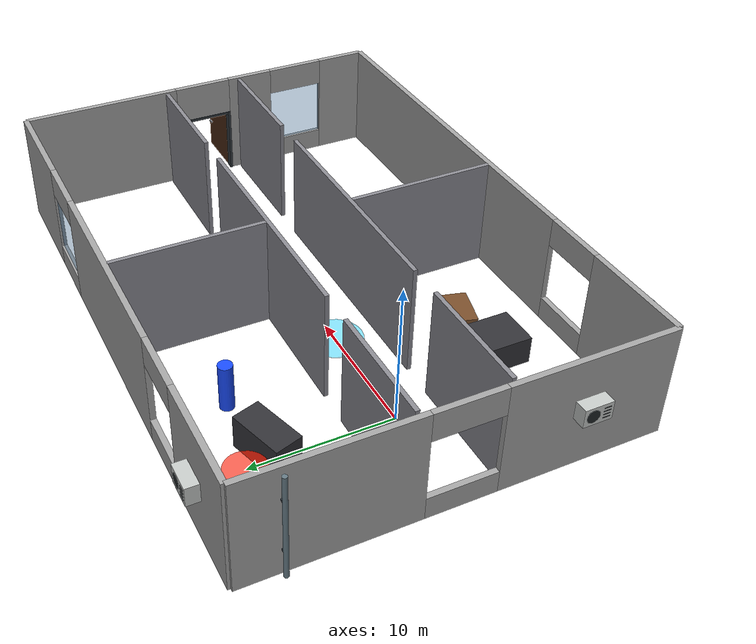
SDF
<sdf version="1.9">
 <world name="fire_scout_floor">
  <model name="building">
   <static>true</static>
   <pose>12.5 0 0 0 0 0</pose>
   <link name="north_wall_far_west">
    <pose>-16.1 14 4 0 0 0</pose>
    <collision name="collision"><geometry><box><size>7.8 0.4 8</size></box></geometry></collision>
    <visual name="visual">
     <geometry><box><size>7.8 0.4 8</size></box></geometry>
     <material><ambient>0.65 0.65 0.65 1</ambient><diffuse>0.65 0.65 0.65 1</diffuse></material>
    </visual>
   </link>
   <link name="north_wall_middle">
    <pose>0 14 4 0 0 0</pose>
    <collision name="collision"><geometry><box><size>15.6 0.4 8</size></box></geometry></collision>
    <visual name="visual">
     <geometry><box><size>15.6 0.4 8</size></box></geometry>
     <material><ambient>0.65 0.65 0.65 1</ambient><diffuse>0.65 0.65 0.65 1</diffuse></material>
    </visual>
   </link>
   <link name="north_wall_far_east">
    <pose>16.1 14 4 0 0 0</pose>
    <collision name="collision"><geometry><box><size>7.8 0.4 8</size></box></geometry></collision>
    <visual name="visual">
     <geometry><box><size>7.8 0.4 8</size></box></geometry>
     <material><ambient>0.65 0.65 0.65 1</ambient><diffuse>0.65 0.65 0.65 1</diffuse></material>
    </visual>
   </link>
   <link name="north_west_window_sill">
    <pose>-10 14 0.8 0 0 0</pose>
    <collision name="collision"><geometry><box><size>4.4 0.4 1.6</size></box></geometry></collision>
    <visual name="visual">
     <geometry><box><size>4.4 0.4 1.6</size></box></geometry>
     <material><ambient>0.65 0.65 0.65 1</ambient><diffuse>0.65 0.65 0.65 1</diffuse></material>
    </visual>
   </link>
   <link name="north_west_window_header">
    <pose>-10 14 7 0 0 0</pose>
    <collision name="collision"><geometry><box><size>4.4 0.4 2</size></box></geometry></collision>
    <visual name="visual">
     <geometry><box><size>4.4 0.4 2</size></box></geometry>
     <material><ambient>0.65 0.65 0.65 1</ambient><diffuse>0.65 0.65 0.65 1</diffuse></material>
    </visual>
   </link>
   <link name="north_window_sill">
    <pose>10 14 0.8 0 0 0</pose>
    <collision name="collision"><geometry><box><size>4.4 0.4 1.6</size></box></geometry></collision>
    <visual name="visual">
     <geometry><box><size>4.4 0.4 1.6</size></box></geometry>
     <material><ambient>0.65 0.65 0.65 1</ambient><diffuse>0.65 0.65 0.65 1</diffuse></material>
    </visual>
   </link>
   <link name="north_window_header">
    <pose>10 14 7 0 0 0</pose>
    <collision name="collision"><geometry><box><size>4.4 0.4 2</size></box></geometry></collision>
    <visual name="visual">
     <geometry><box><size>4.4 0.4 2</size></box></geometry>
     <material><ambient>0.65 0.65 0.65 1</ambient><diffuse>0.65 0.65 0.65 1</diffuse></material>
    </visual>
   </link>
   <link name="north_window_glass">
    <pose>10 14 3.8 0 0 0</pose>
    <collision name="collision"><geometry><box><size>4.4 0.08 4.4</size></box></geometry></collision>
    <visual name="visual">
     <geometry><box><size>4.4 0.08 4.4</size></box></geometry>
     <material>
      <ambient>0.25 0.55 0.80 0.35</ambient>
      <diffuse>0.25 0.55 0.80 0.35</diffuse>
      <specular>0.85 0.85 0.90 0.35</specular>
     </material>
     <transparency>0.65</transparency>
    </visual>
   </link>
   <link name="south_wall_west">
    <pose>-16.1 -14 4 0 0 0</pose>
    <collision name="collision"><geometry><box><size>7.8 0.4 8</size></box></geometry></collision>
    <visual name="visual">
     <geometry><box><size>7.8 0.4 8</size></box></geometry>
     <material><ambient>0.65 0.65 0.65 1</ambient><diffuse>0.65 0.65 0.65 1</diffuse></material>
    </visual>
   </link>
   <link name="south_wall_east">
    <pose>6.1 -14 4 0 0 0</pose>
    <collision name="collision"><geometry><box><size>27.8 0.4 8</size></box></geometry></collision>
    <visual name="visual">
     <geometry><box><size>27.8 0.4 8</size></box></geometry>
     <material><ambient>0.65 0.65 0.65 1</ambient><diffuse>0.65 0.65 0.65 1</diffuse></material>
    </visual>
   </link>
   <link name="south_west_window_sill">
    <pose>-10 -14 0.8 0 0 0</pose>
    <collision name="collision"><geometry><box><size>4.4 0.4 1.6</size></box></geometry></collision>
    <visual name="visual">
     <geometry><box><size>4.4 0.4 1.6</size></box></geometry>
     <material><ambient>0.65 0.65 0.65 1</ambient><diffuse>0.65 0.65 0.65 1</diffuse></material>
    </visual>
   </link>
   <link name="south_west_window_header">
    <pose>-10 -14 7 0 0 0</pose>
    <collision name="collision"><geometry><box><size>4.4 0.4 2</size></box></geometry></collision>
    <visual name="visual">
     <geometry><box><size>4.4 0.4 2</size></box></geometry>
     <material><ambient>0.65 0.65 0.65 1</ambient><diffuse>0.65 0.65 0.65 1</diffuse></material>
    </visual>
   </link>
   <link name="east_wall_south">
    <pose>20 -12.1 4 0 0 0</pose>
    <collision name="collision"><geometry><box><size>0.4 3.8 8</size></box></geometry></collision>
    <visual name="visual">
     <geometry><box><size>0.4 3.8 8</size></box></geometry>
     <material><ambient>0.65 0.65 0.65 1</ambient><diffuse>0.65 0.65 0.65 1</diffuse></material>
    </visual>
   </link>
   <link name="east_wall_door_south">
    <pose>20 -4 4 0 0 0</pose>
    <collision name="body_collision"><geometry><box><size>0.4 3.6 8</size></box></geometry></collision>
    <visual name="body_visual">
     <geometry><box><size>0.4 3.6 8</size></box></geometry>
     <material><ambient>0.65 0.65 0.65 1</ambient><diffuse>0.65 0.65 0.65 1</diffuse></material>
    </visual>
   </link>
   <link name="east_wall_door_north">
    <pose>20 8.1 4 0 0 0</pose>
    <collision name="body_collision"><geometry><box><size>0.4 11.8 8</size></box></geometry></collision>
    <visual name="body_visual">
     <geometry><box><size>0.4 11.8 8</size></box></geometry>
     <material><ambient>0.65 0.65 0.65 1</ambient><diffuse>0.65 0.65 0.65 1</diffuse></material>
    </visual>
   </link>
   <link name="east_door_wall_header">
    <pose>20 0 6.6 0 0 0</pose>
    <collision name="body_collision"><geometry><box><size>0.4 4.4 2.8</size></box></geometry></collision>
    <visual name="body_visual">
     <geometry><box><size>0.4 4.4 2.8</size></box></geometry>
     <material><ambient>0.65 0.65 0.65 1</ambient><diffuse>0.65 0.65 0.65 1</diffuse></material>
    </visual>
   </link>
   <link name="east_door_jamb_south">
    <pose>20 -2.1 2.6 0 0 0</pose>
    <collision name="body_collision"><geometry><box><size>0.56 0.2 5.2</size></box></geometry></collision>
    <visual name="body_visual">
     <geometry><box><size>0.56 0.2 5.2</size></box></geometry>
     <material><ambient>0.20 0.23 0.25 1</ambient><diffuse>0.20 0.23 0.25 1</diffuse></material>
    </visual>
   </link>
   <link name="east_door_jamb_north">
    <pose>20 2.1 2.6 0 0 0</pose>
    <collision name="body_collision"><geometry><box><size>0.56 0.2 5.2</size></box></geometry></collision>
    <visual name="body_visual">
     <geometry><box><size>0.56 0.2 5.2</size></box></geometry>
     <material><ambient>0.20 0.23 0.25 1</ambient><diffuse>0.20 0.23 0.25 1</diffuse></material>
    </visual>
   </link>
   <link name="east_door_frame_top">
    <pose>20 0 5.1 0 0 0</pose>
    <collision name="body_collision"><geometry><box><size>0.56 4 0.2</size></box></geometry></collision>
    <visual name="body_visual">
     <geometry><box><size>0.56 4 0.2</size></box></geometry>
     <material><ambient>0.20 0.23 0.25 1</ambient><diffuse>0.20 0.23 0.25 1</diffuse></material>
    </visual>
   </link>
   <link name="east_door_leaf_open">
    <pose>22.32 -2.1 2.5 0 0 0</pose>
    <collision name="body_collision"><geometry><box><size>4 0.12 5</size></box></geometry></collision>
    <visual name="body_visual">
     <geometry><box><size>4 0.12 5</size></box></geometry>
     <material><ambient>0.30 0.16 0.07 1</ambient><diffuse>0.30 0.16 0.07 1</diffuse></material>
    </visual>
    <collision name="handle_collision">
     <pose>1.56 0.13 -0.2 0 0 0</pose>
     <geometry><box><size>0.36 0.14 0.12</size></box></geometry>
    </collision>
    <visual name="handle_visual">
     <pose>1.56 0.13 -0.2 0 0 0</pose>
     <geometry><box><size>0.36 0.14 0.12</size></box></geometry>
     <material><ambient>0.65 0.67 0.70 1</ambient><diffuse>0.65 0.67 0.70 1</diffuse></material>
    </visual>
   </link>
   <link name="east_window_sill">
    <pose>20 -8 0.8 0 0 0</pose>
    <collision name="collision"><geometry><box><size>0.4 4.4 1.6</size></box></geometry></collision>
    <visual name="visual">
     <geometry><box><size>0.4 4.4 1.6</size></box></geometry>
     <material><ambient>0.65 0.65 0.65 1</ambient><diffuse>0.65 0.65 0.65 1</diffuse></material>
    </visual>
   </link>
   <link name="east_window_header">
    <pose>20 -8 7 0 0 0</pose>
    <collision name="collision"><geometry><box><size>0.4 4.4 2</size></box></geometry></collision>
    <visual name="visual">
     <geometry><box><size>0.4 4.4 2</size></box></geometry>
     <material><ambient>0.65 0.65 0.65 1</ambient><diffuse>0.65 0.65 0.65 1</diffuse></material>
    </visual>
   </link>
   <link name="east_window_glass">
    <pose>20 -8 3.8 0 0 0</pose>
    <collision name="collision"><geometry><box><size>0.08 4.4 4.4</size></box></geometry></collision>
    <visual name="visual">
     <geometry><box><size>0.08 4.4 4.4</size></box></geometry>
     <material>
      <ambient>0.25 0.55 0.80 0.35</ambient>
      <diffuse>0.25 0.55 0.80 0.35</diffuse>
      <specular>0.85 0.85 0.90 0.35</specular>
     </material>
     <transparency>0.65</transparency>
    </visual>
   </link>
   <link name="west_wall_lower">
    <pose>-20 -8.2 4 0 0 0</pose>
    <collision name="collision"><geometry><box><size>0.4 11.6 8</size></box></geometry></collision>
    <visual name="visual">
     <geometry><box><size>0.4 11.6 8</size></box></geometry>
     <material><ambient>0.65 0.65 0.65 1</ambient><diffuse>0.65 0.65 0.65 1</diffuse></material>
    </visual>
   </link>
   <link name="west_wall_upper">
    <pose>-20 8.2 4 0 0 0</pose>
    <collision name="collision"><geometry><box><size>0.4 11.6 8</size></box></geometry></collision>
    <visual name="visual">
     <geometry><box><size>0.4 11.6 8</size></box></geometry>
     <material><ambient>0.65 0.65 0.65 1</ambient><diffuse>0.65 0.65 0.65 1</diffuse></material>
    </visual>
   </link>
   <link name="window_sill">
    <pose>-20 0 0.8 0 0 0</pose>
    <collision name="collision"><geometry><box><size>0.4 4.8 1.6</size></box></geometry></collision>
    <visual name="visual">
     <geometry><box><size>0.4 4.8 1.6</size></box></geometry>
     <material><ambient>0.65 0.65 0.65 1</ambient><diffuse>0.65 0.65 0.65 1</diffuse></material>
    </visual>
   </link>
   <link name="window_header">
    <pose>-20 0 7 0 0 0</pose>
    <collision name="collision"><geometry><box><size>0.4 4.8 2</size></box></geometry></collision>
    <visual name="visual">
     <geometry><box><size>0.4 4.8 2</size></box></geometry>
     <material><ambient>0.65 0.65 0.65 1</ambient><diffuse>0.65 0.65 0.65 1</diffuse></material>
    </visual>
   </link>
   <link name="corridor_north_left">
    <pose>-15.4 3 4 0 0 0</pose>
    <collision name="collision"><geometry><box><size>8.4 0.3 8</size></box></geometry></collision>
    <visual name="visual">
     <geometry><box><size>8.4 0.3 8</size></box></geometry>
     <material><ambient>0.55 0.55 0.58 1</ambient><diffuse>0.55 0.55 0.58 1</diffuse></material>
    </visual>
   </link>
   <link name="corridor_north_middle">
    <pose>0 3 4 0 0 0</pose>
    <collision name="collision"><geometry><box><size>17.6 0.3 8</size></box></geometry></collision>
    <visual name="visual">
     <geometry><box><size>17.6 0.3 8</size></box></geometry>
     <material><ambient>0.55 0.55 0.58 1</ambient><diffuse>0.55 0.55 0.58 1</diffuse></material>
    </visual>
   </link>
   <link name="corridor_north_right">
    <pose>15.4 3 4 0 0 0</pose>
    <collision name="collision"><geometry><box><size>8.4 0.3 8</size></box></geometry></collision>
    <visual name="visual">
     <geometry><box><size>8.4 0.3 8</size></box></geometry>
     <material><ambient>0.55 0.55 0.58 1</ambient><diffuse>0.55 0.55 0.58 1</diffuse></material>
    </visual>
   </link>
   <link name="corridor_south_left">
    <pose>-15.4 -3 4 0 0 0</pose>
    <collision name="collision"><geometry><box><size>8.4 0.3 8</size></box></geometry></collision>
    <visual name="visual">
     <geometry><box><size>8.4 0.3 8</size></box></geometry>
     <material><ambient>0.55 0.55 0.58 1</ambient><diffuse>0.55 0.55 0.58 1</diffuse></material>
    </visual>
   </link>
   <link name="corridor_south_middle">
    <pose>0 -3 4 0 0 0</pose>
    <collision name="collision"><geometry><box><size>17.6 0.3 8</size></box></geometry></collision>
    <visual name="visual">
     <geometry><box><size>17.6 0.3 8</size></box></geometry>
     <material><ambient>0.55 0.55 0.58 1</ambient><diffuse>0.55 0.55 0.58 1</diffuse></material>
    </visual>
   </link>
   <link name="corridor_south_right">
    <pose>15.4 -3 4 0 0 0</pose>
    <collision name="collision"><geometry><box><size>8.4 0.3 8</size></box></geometry></collision>
    <visual name="visual">
     <geometry><box><size>8.4 0.3 8</size></box></geometry>
     <material><ambient>0.55 0.55 0.58 1</ambient><diffuse>0.55 0.55 0.58 1</diffuse></material>
    </visual>
   </link>
   <link name="north_divider">
    <pose>0 8.5 4 0 0 0</pose>
    <collision name="collision"><geometry><box><size>0.3 10.7 8</size></box></geometry></collision>
    <visual name="visual">
     <geometry><box><size>0.3 10.7 8</size></box></geometry>
     <material><ambient>0.55 0.55 0.58 1</ambient><diffuse>0.55 0.55 0.58 1</diffuse></material>
    </visual>
   </link>
   <link name="south_divider">
    <pose>0 -8.5 4 0 0 0</pose>
    <collision name="collision"><geometry><box><size>0.3 10.7 8</size></box></geometry></collision>
    <visual name="visual">
     <geometry><box><size>0.3 10.7 8</size></box></geometry>
     <material><ambient>0.55 0.55 0.58 1</ambient><diffuse>0.55 0.55 0.58 1</diffuse></material>
    </visual>
   </link>
  </model>
  <model name="obstacle_region1">
   <static>true</static>
   <pose>0.5 8.4 1.2 0 0 0.3</pose>
   <link name="link">
    <collision name="collision"><geometry><box><size>4 2 2.4</size></box></geometry></collision>
    <visual name="visual">
     <geometry><box><size>4 2 2.4</size></box></geometry>
     <material><ambient>0.20 0.20 0.22 1</ambient><diffuse>0.20 0.20 0.22 1</diffuse></material>
    </visual>
   </link>
  </model>
  <model name="obstacle_region3">
   <static>true</static>
   <pose>2.5 -9 1 0 0 0</pose>
   <link name="link">
    <collision name="collision"><geometry><box><size>3 3 2</size></box></geometry></collision>
    <visual name="visual">
     <geometry><box><size>3 3 2</size></box></geometry>
     <material><ambient>0.20 0.20 0.22 1</ambient><diffuse>0.20 0.20 0.22 1</diffuse></material>
    </visual>
   </link>
  </model>
  <model name="fire_01">
   <static>true</static>
   <pose>-1.5 10.6 0.9 0 0 0</pose>
   <link name="link">
    <visual name="visual">
     <geometry><cylinder><radius>1.4</radius><length>1.8</length></cylinder></geometry>
     <material><ambient>1.0 0.10 0.0 0.65</ambient><diffuse>1.0 0.10 0.0 0.65</diffuse></material>
    </visual>
   </link>
  </model>
  <model name="victim_01">
   <static>true</static>
   <pose>5.5 9 1.7 0 0 0</pose>
   <link name="link">
    <collision name="collision">
     <geometry><cylinder><radius>0.5</radius><length>3.4</length></cylinder></geometry>
    </collision>
    <visual name="visual">
     <geometry><cylinder><radius>0.5</radius><length>3.4</length></cylinder></geometry>
     <material><ambient>0.1 0.3 1.0 1</ambient><diffuse>0.1 0.3 1.0 1</diffuse></material>
    </visual>
   </link>
  </model>
  <model name="rendezvous_marker">
   <static>true</static>
   <pose>8.5 0 0.06 0 0 0</pose>
   <link name="link">
    <visual name="visual">
     <geometry><cylinder><radius>2</radius><length>0.06</length></cylinder></geometry>
     <material><ambient>0.0 0.8 1.0 0.45</ambient><diffuse>0.0 0.8 1.0 0.45</diffuse></material>
    </visual>
   </link>
  </model>
  <model name="ac_outdoor_west">
   <static>true</static>
   <pose>-8.23 -8 4.6 0 0 -1.5707963</pose>
   <link name="housing">
    <collision name="housing_collision"><geometry><box><size>2 0.9 1.3</size></box></geometry></collision>
    <visual name="housing_visual">
     <geometry><box><size>2 0.9 1.3</size></box></geometry>
     <material><ambient>0.78 0.80 0.79 1</ambient><diffuse>0.78 0.80 0.79 1</diffuse></material>
    </visual>
    <visual name="fan_visual">
     <pose>-0.36 -0.454 0 1.5707963 0 0</pose>
     <geometry><cylinder><radius>0.46</radius><length>0.016</length></cylinder></geometry>
     <material><ambient>0.12 0.14 0.15 1</ambient><diffuse>0.12 0.14 0.15 1</diffuse></material>
    </visual>
    <visual name="vent_0_visual">
     <pose>0.58 -0.46 -0.36 0 0 0</pose>
     <geometry><box><size>0.5 0.024 0.05</size></box></geometry>
     <material><ambient>0.24 0.26 0.27 1</ambient><diffuse>0.24 0.26 0.27 1</diffuse></material>
    </visual>
    <visual name="vent_1_visual">
     <pose>0.58 -0.46 -0.12 0 0 0</pose>
     <geometry><box><size>0.5 0.024 0.05</size></box></geometry>
     <material><ambient>0.24 0.26 0.27 1</ambient><diffuse>0.24 0.26 0.27 1</diffuse></material>
    </visual>
    <visual name="vent_2_visual">
     <pose>0.58 -0.46 0.12 0 0 0</pose>
     <geometry><box><size>0.5 0.024 0.05</size></box></geometry>
     <material><ambient>0.24 0.26 0.27 1</ambient><diffuse>0.24 0.26 0.27 1</diffuse></material>
    </visual>
    <visual name="vent_3_visual">
     <pose>0.58 -0.46 0.36 0 0 0</pose>
     <geometry><box><size>0.5 0.024 0.05</size></box></geometry>
     <material><ambient>0.24 0.26 0.27 1</ambient><diffuse>0.24 0.26 0.27 1</diffuse></material>
    </visual>
    <collision name="bracket_0_collision">
     <pose>-0.7 0.1 -0.74 0 0 0</pose>
     <geometry><box><size>0.12 0.72 0.16</size></box></geometry>
    </collision>
    <visual name="bracket_0_visual">
     <pose>-0.7 0.1 -0.74 0 0 0</pose>
     <geometry><box><size>0.12 0.72 0.16</size></box></geometry>
     <material><ambient>0.35 0.38 0.40 1</ambient><diffuse>0.35 0.38 0.40 1</diffuse></material>
    </visual>
    <collision name="bracket_1_collision">
     <pose>0.7 0.1 -0.74 0 0 0</pose>
     <geometry><box><size>0.12 0.72 0.16</size></box></geometry>
    </collision>
    <visual name="bracket_1_visual">
     <pose>0.7 0.1 -0.74 0 0 0</pose>
     <geometry><box><size>0.12 0.72 0.16</size></box></geometry>
     <material><ambient>0.35 0.38 0.40 1</ambient><diffuse>0.35 0.38 0.40 1</diffuse></material>
    </visual>
   </link>
  </model>
  <model name="ac_outdoor_north">
   <static>true</static>
   <pose>-3.5 14.73 4.5 0 0 3.1415927</pose>
   <link name="housing">
    <collision name="housing_collision"><geometry><box><size>2 0.9 1.3</size></box></geometry></collision>
    <visual name="housing_visual">
     <geometry><box><size>2 0.9 1.3</size></box></geometry>
     <material><ambient>0.78 0.80 0.79 1</ambient><diffuse>0.78 0.80 0.79 1</diffuse></material>
    </visual>
    <visual name="fan_visual">
     <pose>-0.36 -0.454 0 1.5707963 0 0</pose>
     <geometry><cylinder><radius>0.46</radius><length>0.016</length></cylinder></geometry>
     <material><ambient>0.12 0.14 0.15 1</ambient><diffuse>0.12 0.14 0.15 1</diffuse></material>
    </visual>
    <visual name="vent_0_visual">
     <pose>0.58 -0.46 -0.36 0 0 0</pose>
     <geometry><box><size>0.5 0.024 0.05</size></box></geometry>
     <material><ambient>0.24 0.26 0.27 1</ambient><diffuse>0.24 0.26 0.27 1</diffuse></material>
    </visual>
    <visual name="vent_1_visual">
     <pose>0.58 -0.46 -0.12 0 0 0</pose>
     <geometry><box><size>0.5 0.024 0.05</size></box></geometry>
     <material><ambient>0.24 0.26 0.27 1</ambient><diffuse>0.24 0.26 0.27 1</diffuse></material>
    </visual>
    <visual name="vent_2_visual">
     <pose>0.58 -0.46 0.12 0 0 0</pose>
     <geometry><box><size>0.5 0.024 0.05</size></box></geometry>
     <material><ambient>0.24 0.26 0.27 1</ambient><diffuse>0.24 0.26 0.27 1</diffuse></material>
    </visual>
    <visual name="vent_3_visual">
     <pose>0.58 -0.46 0.36 0 0 0</pose>
     <geometry><box><size>0.5 0.024 0.05</size></box></geometry>
     <material><ambient>0.24 0.26 0.27 1</ambient><diffuse>0.24 0.26 0.27 1</diffuse></material>
    </visual>
    <collision name="bracket_0_collision">
     <pose>-0.7 0.1 -0.74 0 0 0</pose>
     <geometry><box><size>0.12 0.72 0.16</size></box></geometry>
    </collision>
    <visual name="bracket_0_visual">
     <pose>-0.7 0.1 -0.74 0 0 0</pose>
     <geometry><box><size>0.12 0.72 0.16</size></box></geometry>
     <material><ambient>0.35 0.38 0.40 1</ambient><diffuse>0.35 0.38 0.40 1</diffuse></material>
    </visual>
    <collision name="bracket_1_collision">
     <pose>0.7 0.1 -0.74 0 0 0</pose>
     <geometry><box><size>0.12 0.72 0.16</size></box></geometry>
    </collision>
    <visual name="bracket_1_visual">
     <pose>0.7 0.1 -0.74 0 0 0</pose>
     <geometry><box><size>0.12 0.72 0.16</size></box></geometry>
     <material><ambient>0.35 0.38 0.40 1</ambient><diffuse>0.35 0.38 0.40 1</diffuse></material>
    </visual>
   </link>
  </model>
  <model name="ac_outdoor_south">
   <static>true</static>
   <pose>18.5 -14.73 4.6 0 0 0</pose>
   <link name="housing">
    <collision name="housing_collision"><geometry><box><size>2 0.9 1.3</size></box></geometry></collision>
    <visual name="housing_visual">
     <geometry><box><size>2 0.9 1.3</size></box></geometry>
     <material><ambient>0.78 0.80 0.79 1</ambient><diffuse>0.78 0.80 0.79 1</diffuse></material>
    </visual>
    <visual name="fan_visual">
     <pose>-0.36 -0.454 0 1.5707963 0 0</pose>
     <geometry><cylinder><radius>0.46</radius><length>0.016</length></cylinder></geometry>
     <material><ambient>0.12 0.14 0.15 1</ambient><diffuse>0.12 0.14 0.15 1</diffuse></material>
    </visual>
    <visual name="vent_0_visual">
     <pose>0.58 -0.46 -0.36 0 0 0</pose>
     <geometry><box><size>0.5 0.024 0.05</size></box></geometry>
     <material><ambient>0.24 0.26 0.27 1</ambient><diffuse>0.24 0.26 0.27 1</diffuse></material>
    </visual>
    <visual name="vent_1_visual">
     <pose>0.58 -0.46 -0.12 0 0 0</pose>
     <geometry><box><size>0.5 0.024 0.05</size></box></geometry>
     <material><ambient>0.24 0.26 0.27 1</ambient><diffuse>0.24 0.26 0.27 1</diffuse></material>
    </visual>
    <visual name="vent_2_visual">
     <pose>0.58 -0.46 0.12 0 0 0</pose>
     <geometry><box><size>0.5 0.024 0.05</size></box></geometry>
     <material><ambient>0.24 0.26 0.27 1</ambient><diffuse>0.24 0.26 0.27 1</diffuse></material>
    </visual>
    <visual name="vent_3_visual">
     <pose>0.58 -0.46 0.36 0 0 0</pose>
     <geometry><box><size>0.5 0.024 0.05</size></box></geometry>
     <material><ambient>0.24 0.26 0.27 1</ambient><diffuse>0.24 0.26 0.27 1</diffuse></material>
    </visual>
    <collision name="bracket_0_collision">
     <pose>-0.7 0.1 -0.74 0 0 0</pose>
     <geometry><box><size>0.12 0.72 0.16</size></box></geometry>
    </collision>
    <visual name="bracket_0_visual">
     <pose>-0.7 0.1 -0.74 0 0 0</pose>
     <geometry><box><size>0.12 0.72 0.16</size></box></geometry>
     <material><ambient>0.35 0.38 0.40 1</ambient><diffuse>0.35 0.38 0.40 1</diffuse></material>
    </visual>
    <collision name="bracket_1_collision">
     <pose>0.7 0.1 -0.74 0 0 0</pose>
     <geometry><box><size>0.12 0.72 0.16</size></box></geometry>
    </collision>
    <visual name="bracket_1_visual">
     <pose>0.7 0.1 -0.74 0 0 0</pose>
     <geometry><box><size>0.12 0.72 0.16</size></box></geometry>
     <material><ambient>0.35 0.38 0.40 1</ambient><diffuse>0.35 0.38 0.40 1</diffuse></material>
    </visual>
   </link>
  </model>
  <model name="water_pipe_west">
   <static>true</static>
   <pose>-7.98 11 3.8 0 0 -1.5707963</pose>
   <link name="pipe">
    <collision name="pipe_collision">
     <geometry><cylinder><radius>0.16</radius><length>7.6</length></cylinder></geometry>
    </collision>
    <visual name="pipe_visual">
     <geometry><cylinder><radius>0.16</radius><length>7.6</length></cylinder></geometry>
     <material><ambient>0.40 0.48 0.52 1</ambient><diffuse>0.40 0.48 0.52 1</diffuse></material>
    </visual>
    <collision name="wall_mount_0_collision">
     <pose>0 0.17 -1.9 0 0 0</pose>
     <geometry><box><size>0.24 0.22 0.16</size></box></geometry>
    </collision>
    <visual name="wall_mount_0_visual">
     <pose>0 0.17 -1.9 0 0 0</pose>
     <geometry><box><size>0.24 0.22 0.16</size></box></geometry>
     <material><ambient>0.24 0.28 0.31 1</ambient><diffuse>0.24 0.28 0.31 1</diffuse></material>
    </visual>
    <collision name="wall_mount_1_collision">
     <pose>0 0.17 1.9 0 0 0</pose>
     <geometry><box><size>0.24 0.22 0.16</size></box></geometry>
    </collision>
    <visual name="wall_mount_1_visual">
     <pose>0 0.17 1.9 0 0 0</pose>
     <geometry><box><size>0.24 0.22 0.16</size></box></geometry>
     <material><ambient>0.24 0.28 0.31 1</ambient><diffuse>0.24 0.28 0.31 1</diffuse></material>
    </visual>
   </link>
  </model>
  <model name="water_pipe_south">
   <static>true</static>
   <pose>-4.5 -14.48 3.8 0 0 0</pose>
   <link name="pipe">
    <collision name="pipe_collision">
     <geometry><cylinder><radius>0.16</radius><length>7.6</length></cylinder></geometry>
    </collision>
    <visual name="pipe_visual">
     <geometry><cylinder><radius>0.16</radius><length>7.6</length></cylinder></geometry>
     <material><ambient>0.40 0.48 0.52 1</ambient><diffuse>0.40 0.48 0.52 1</diffuse></material>
    </visual>
    <collision name="wall_mount_0_collision">
     <pose>0 0.17 -1.9 0 0 0</pose>
     <geometry><box><size>0.24 0.22 0.16</size></box></geometry>
    </collision>
    <visual name="wall_mount_0_visual">
     <pose>0 0.17 -1.9 0 0 0</pose>
     <geometry><box><size>0.24 0.22 0.16</size></box></geometry>
     <material><ambient>0.24 0.28 0.31 1</ambient><diffuse>0.24 0.28 0.31 1</diffuse></material>
    </visual>
    <collision name="wall_mount_1_collision">
     <pose>0 0.17 1.9 0 0 0</pose>
     <geometry><box><size>0.24 0.22 0.16</size></box></geometry>
    </collision>
    <visual name="wall_mount_1_visual">
     <pose>0 0.17 1.9 0 0 0</pose>
     <geometry><box><size>0.24 0.22 0.16</size></box></geometry>
     <material><ambient>0.24 0.28 0.31 1</ambient><diffuse>0.24 0.28 0.31 1</diffuse></material>
    </visual>
   </link>
  </model>
  <model name="toppled_cabinet_main_north">
   <static>true</static>
   <pose>-3.8 9.5 0.46 1.5707963 0 0.32</pose>
   <link name="cabinet">
    <collision name="body_collision"><geometry><box><size>2.8 0.9 2.2</size></box></geometry></collision>
    <visual name="body_visual">
     <geometry><box><size>2.8 0.9 2.2</size></box></geometry>
     <material><ambient>0.34 0.22 0.13 1</ambient><diffuse>0.42 0.28 0.16 1</diffuse></material>
    </visual>
    <visual name="door_seam_visual">
     <pose>0 -0.456 0 0 0 0</pose>
     <geometry><box><size>0.035 0.015 1.95</size></box></geometry>
     <material><ambient>0.10 0.08 0.06 1</ambient><diffuse>0.10 0.08 0.06 1</diffuse></material>
    </visual>
    <visual name="handle_left_visual">
     <pose>-0.18 -0.47 0 0 0 0</pose>
     <geometry><box><size>0.08 0.03 0.32</size></box></geometry>
     <material><ambient>0.70 0.70 0.68 1</ambient><diffuse>0.70 0.70 0.68 1</diffuse></material>
    </visual>
    <visual name="handle_right_visual">
     <pose>0.18 -0.47 0 0 0 0</pose>
     <geometry><box><size>0.08 0.03 0.32</size></box></geometry>
     <material><ambient>0.70 0.70 0.68 1</ambient><diffuse>0.70 0.70 0.68 1</diffuse></material>
    </visual>
   </link>
  </model>
  <model name="toppled_cabinet_main_south">
   <static>true</static>
   <pose>7 -8.5 0.46 1.5707963 0 -0.26</pose>
   <link name="cabinet">
    <collision name="body_collision"><geometry><box><size>3.0 0.9 2.3</size></box></geometry></collision>
    <visual name="body_visual">
     <geometry><box><size>3.0 0.9 2.3</size></box></geometry>
     <material><ambient>0.38 0.25 0.14 1</ambient><diffuse>0.48 0.31 0.17 1</diffuse></material>
    </visual>
    <visual name="door_seam_visual">
     <pose>0 -0.456 0 0 0 0</pose>
     <geometry><box><size>0.035 0.015 2.05</size></box></geometry>
     <material><ambient>0.10 0.08 0.06 1</ambient><diffuse>0.10 0.08 0.06 1</diffuse></material>
    </visual>
   </link>
  </model>
 </world>
</sdf>
